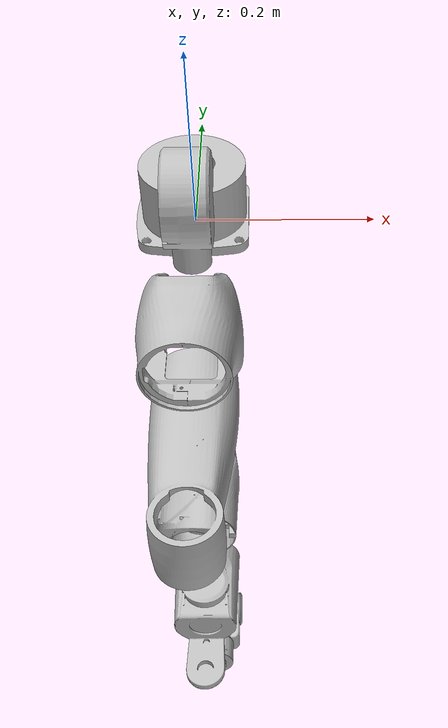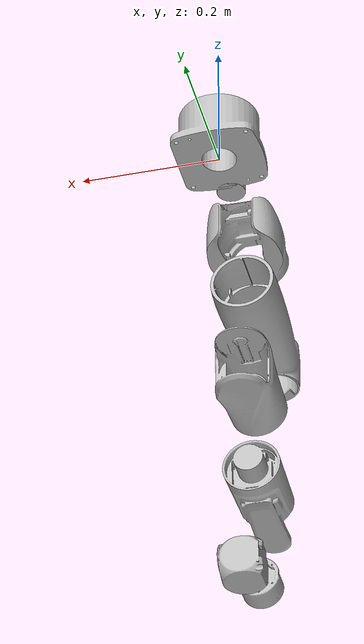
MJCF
<mujoco model="r1_pro_right_arm">
    <actuator>
        <motor ctrllimited="true" ctrlrange="-55.0 55.0" joint="Actuator1" name="torq_j1"/>
        <motor ctrllimited="true" ctrlrange="-55.0 55.0" joint="Actuator2" name="torq_j2"/>
        <motor ctrllimited="true" ctrlrange="-25.0 25.0" joint="Actuator3" name="torq_j3"/>
        <motor ctrllimited="true" ctrlrange="-25.0 25.0" joint="Actuator4" name="torq_j4"/>
        <motor ctrllimited="true" ctrlrange="-18.0 18.0" joint="Actuator5" name="torq_j5"/>
        <motor ctrllimited="true" ctrlrange="-18.0 18.0" joint="Actuator6" name="torq_j6"/>
        <motor ctrllimited="true" ctrlrange="-18.0 18.0" joint="Actuator7" name="torq_j7"/>
    </actuator>
    <asset>
        <mesh name="base_link" file="meshes/right_arm_base_link.stl"/>
        <mesh name="link1" file="meshes/right_arm_link1.stl"/>
        <mesh name="link2" file="meshes/right_arm_link2.stl"/>
        <mesh name="link3" file="meshes/right_arm_link3.stl"/>
        <mesh name="link4" file="meshes/right_arm_link4.stl"/>
        <mesh name="link5" file="meshes/right_arm_link5.stl"/>
        <mesh name="link6" file="meshes/right_arm_link6.stl"/>
        <mesh name="link7" file="meshes/right_arm_link7.stl"/>
    </asset>
    <worldbody>
        <body name="base" pos="0 0 0">
            <camera mode="fixed" name="robotview" pos="1.0 0 0.4" quat="0.653 0.271 0.271 0.653"/>
            <inertial diaginertia="0 0 0" mass="0" pos="0 0 0"/>
            <geom type="mesh" contype="0" conaffinity="0" group="1" rgba="0.75 0.75 0.75 1" mesh="base_link"/>
            <geom type="mesh" conaffinity="0" rgba="0.75 0.75 0.75 1" mesh="base_link" name="base_collision"/>
            <body name="link1" pos="0 -0.0735 0">
                <inertial pos="-0.00042261 -0.074132 7.8365e-05" quat="0.00300927 -0.000385009 0.708417 0.705787" mass="1.135" diaginertia="0.000616038 0.000471349 0.000302583"/>
                <joint name="Actuator1" pos="0 0 0" axis="0 1 0" limited="true" range="-4.4506 1.309" damping="0.5"/>
                <geom type="mesh" contype="0" conaffinity="0" group="1" rgba="0.75 0.75 0.75 1" mesh="link1"/>
                <geom type="mesh" conaffinity="0" rgba="0.75 0.75 0.75 1" mesh="link1" name="link1_collision"/>
                <body name="link2" pos="0.023988 -0.081265 0">
                    <inertial pos="-0.022361 0.0049527 -0.032732" quat="-0.0325444 -0.0186082 0.973837 -0.224135" mass="0.92" diaginertia="0.000382057 0.000345953 0.00032461"/>
                    <joint name="Actuator2" pos="0 0 0" axis="1 0 0" limited="true" range="-3.1416 0.1745" damping="0.5"/>
                    <geom type="mesh" contype="0" conaffinity="0" group="1" rgba="0.75 0.75 0.75 1" mesh="link2"/>
                    <geom type="mesh" conaffinity="0" rgba="0.75 0.75 0.75 1" mesh="link2" name="link2_collision"/>
                    <body name="link3" pos="-0.023988 0 -0.1155">
                        <inertial pos="0.0053839 -0.00087109 -0.11261" quat="0.0126681 0.987422 -0.00924193 -0.15733" mass="1.245" diaginertia="0.000765324 0.000738726 0.00033133"/>
                        <joint name="Actuator3" pos="0 0 0" axis="0 0 1" limited="true" range="-2.3562 2.3562" damping="0.5"/>
                        <geom type="mesh" contype="0" conaffinity="0" group="1" rgba="0.75 0.75 0.75 1" mesh="link3"/>
                        <geom type="mesh" conaffinity="0" rgba="0.75 0.75 0.75 1" mesh="link3" name="link3_collision"/>
                        <body name="link4" pos="0 0.035058 -0.1945">
                            <inertial pos="-0.00058877 -0.035687 -0.057422" quat="-0.705093 -0.0413531 0.030633 0.707245" mass="0.827" diaginertia="0.000220262 0.000161937 0.000126441"/>
                            <joint name="Actuator4" pos="0 0 0" axis="0 1 0" limited="true" range="-2.0944 0.3491" damping="0.5"/>
                            <geom type="mesh" contype="0" conaffinity="0" group="1" rgba="0.75 0.75 0.75 1" mesh="link4"/>
                            <geom type="mesh" conaffinity="0" rgba="0.75 0.75 0.75 1" mesh="link4" name="link4_collision"/>
                            <body name="link5" pos="0 -0.035058 -0.095">
                                <inertial pos="-2.2815e-07 0.0031762 -0.07334" quat="2.18067e-05 -0.000267049 0.997325 0.0730935" mass="0.63" diaginertia="0.00069134 0.000664096 0.000303914"/>
                                <joint name="Actuator5" pos="0 0 0" axis="0 0 1" limited="true" range="-2.3562 2.3562" damping="0.5"/>
                                <geom type="mesh" contype="0" conaffinity="0" group="1" rgba="0.75 0.75 0.75 1" mesh="link5"/>
                                <geom type="mesh" conaffinity="0" rgba="0.75 0.75 0.75 1" mesh="link5" name="link5_collision"/>
                                <body name="link6" pos="0 0.028001 -0.16305">
                                    <inertial pos="0.0017914 -0.027486 0.00025485" quat="0.0847037 -0.110151 0.696434 0.70404" mass="0.527" diaginertia="8.56852e-05 8.24984e-05 8.11794e-05"/>
                                    <joint name="Actuator6" pos="0 0 0" axis="0 1 0" limited="true" range="-1.0472 1.0472" damping="0.1"/>
                                    <geom type="mesh" contype="0" conaffinity="0" group="1" rgba="0.75 0.75 0.75 1" mesh="link6"/>
                                    <geom type="mesh" conaffinity="0" rgba="0.75 0.75 0.75 1" mesh="link6" name="link6_collision"/>
                                    <body name="link7" pos="0.0295 -0.028001 0">
                                        <inertial pos="-0.022945 2.2938e-07 -0.056523" quat="2.92435e-05 0.949513 -7.4095e-05 -0.313729" mass="0.185" diaginertia="9.98337e-05 9.467e-05 3.98293e-05"/>
                                        <joint name="Actuator7" pos="0 0 0" axis="1 0 0" limited="true" range="-1.5708 1.5708" damping="0.1"/>
                                        <geom type="mesh" contype="0" conaffinity="0" group="1" rgba="0.75 0.75 0.75 1" mesh="link7"/>
                                        <geom type="mesh" conaffinity="0" rgba="0.75 0.75 0.75 1" mesh="link7" name="link7_collision"/>
                                        <body name="right_hand" pos="-0.0295 0 -0.16065" quat="1 0 0 0">
                                            <camera mode="fixed" name="eye_in_hand" pos="0.05 0 0" quat="0 0.707108 0.707108 0" fovy="75"/>
                                        </body>
                                    </body>
                                </body>
                            </body>
                        </body>
                    </body>
                </body>
            </body>
        </body>
    </worldbody>
</mujoco>
